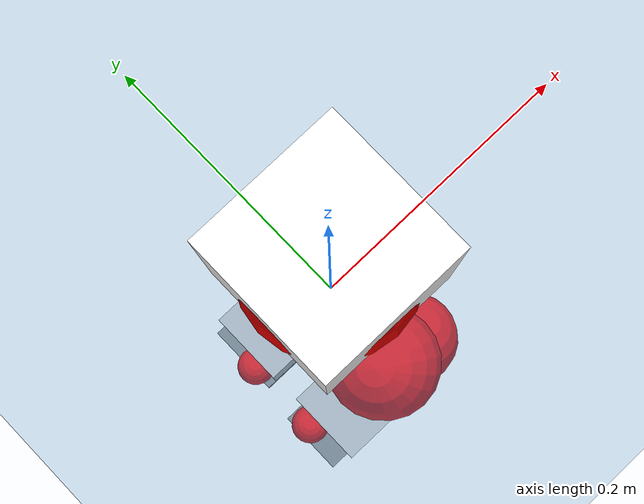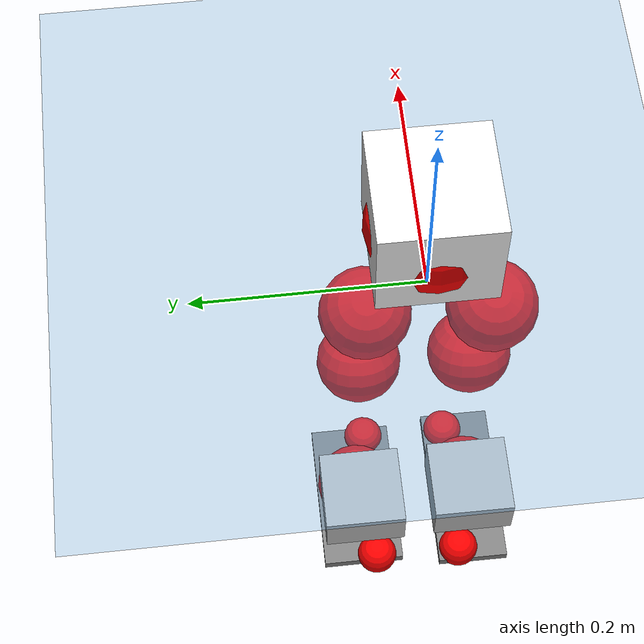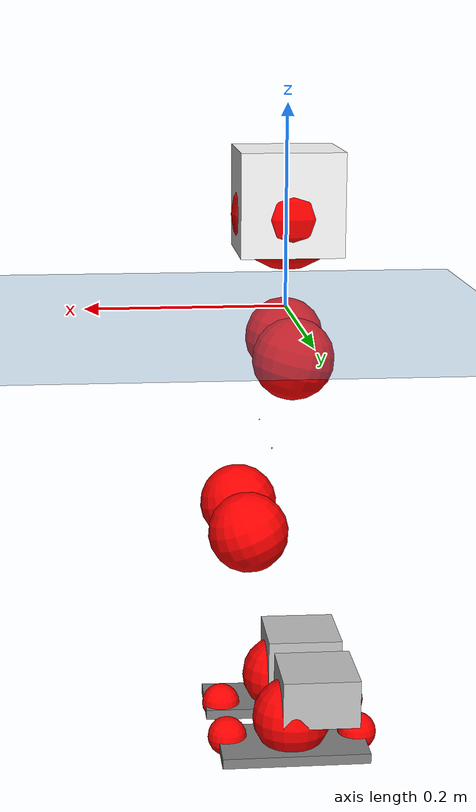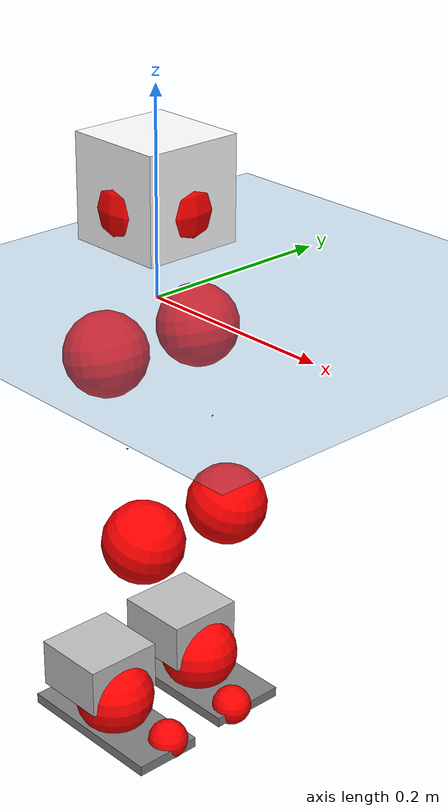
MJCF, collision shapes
<mujoco model="pi_12dof_release_v1">
  <compiler angle="radian" assetdir="assets" balanceinertia="true" inertiafromgeom="false"/>

  <option timestep="0.005" density="1.2" viscosity="2e-05"/>

  <size nkey="1"/>

  <visual>
    <quality shadowsize="8192"/>
    <map shadowclip="0.5"/>
  </visual>

  <default>
    <default class="/">
      <joint armature="0.01" damping="0.01" frictionloss="0.01"/>
      <geom contype="0" conaffinity="0" group="1" solref="-1000 -80"/>
      <site size="0.01 0.005 0.005" group="5"/>
      <general forcelimited="true" biastype="affine" gainprm="20" biasprm="0 -20 -0.5"/>
      <default class="foot">
        <geom size="0.0845 0.036 0.005" type="box" condim="6" group="4" priority="1" friction="0.9 0.2 0.2" solimp="0.015 1 0.005"/>
      </default>
      <default class="reward_collision_sphere">
        <geom group="5" rgba="1 0 0 1"/>
      </default>
    </default>
  </default>

  <asset>
    <texture type="skybox" colorspace="auto" name="//unnamed_texture_0" builtin="gradient" rgb1="0.95 0.95 0.95" rgb2="0.95 0.95 0.95" width="100" height="600"/>
    <texture type="2d" colorspace="auto" name="texplane" builtin="checker" rgb1="0.345 0.575 0.748" rgb2="0.345 0.575 0.748" markrgb="1 1 1" width="512" height="512"/>
    <material name="MatPlane" class="/" texture="texplane" texuniform="true" texrepeat="2 2" specular="0.9"/>
    <mesh name="baselink_1" class="/" file="baselink_1.STL"/>
    <mesh name="r_hip_pitch_link" class="/" file="r_hip_pitch_link.STL"/>
    <mesh name="r_hip_roll_link" class="/" file="r_hip_roll_link.STL"/>
    <mesh name="r_thigh_link" class="/" file="r_thigh_link.STL"/>
    <mesh name="r_calf_link" class="/" file="r_calf_link.STL"/>
    <mesh name="r_ankle_pitch_link" class="/" file="r_ankle_pitch_link.STL"/>
    <mesh name="r_ankle_roll_link" class="/" file="r_ankle_roll_link.STL"/>
    <mesh name="l_hip_pitch_link" class="/" file="l_hip_pitch_link.STL"/>
    <mesh name="l_hip_roll_link" class="/" file="l_hip_roll_link.STL"/>
    <mesh name="l_thigh_link" class="/" file="l_thigh_link.STL"/>
    <mesh name="l_calf_link" class="/" file="l_calf_link.STL"/>
    <mesh name="l_ankle_pitch_link" class="/" file="l_ankle_pitch_link.STL"/>
    <mesh name="l_ankle_roll_link" class="/" file="l_ankle_roll_link.STL"/>
  </asset>

  <worldbody>
    <geom name="floor" class="/" size="100 100 0.125" type="plane" group="0" material="MatPlane"/>
    <light name="toplight_shadow" class="/" pos="0 0 5" dir="0.0990148 0.0990148 -0.990148" type="directional" ambient="0.04 0.04 0.04" diffuse="0.55 0.55 0.55" specular="0.12 0.12 0.12"/>
    <light name="toplight_fill" class="/" pos="0 0 5" dir="0.0990148 0.0990148 -0.990148" type="directional" castshadow="false" ambient="0.04 0.04 0.04" diffuse="0.3 0.3 0.3" specular="0.08 0.08 0.08"/>
    <body name="trunk" pos="-0.000299403 -0.000103245 0.00126836" quat="0.999999 6.94753e-05 -0.000142206 -0.00100592">
      <inertial pos="0.00122007 -0.00248605 0.0510529" quat="0.695404 0.0097721 0.0100442 0.718482" mass="2.23295" diaginertia="0.00980793 0.00162446 0.0156088"/>
      <joint name="//unnamed_joint_0" type="free"/>
      <geom name="//unnamed_geom_1" class="/" type="mesh" density="0" rgba="1 1 1 1" mesh="baselink_1"/>
      <geom name="//unnamed_geom_2" class="/" size="0.0503515 0.0503515 0.0503515" pos="0 0 0.104565" type="box" rgba="1 1 1 1"/>
      <geom name="//unnamed_geom_3" class="reward_collision_sphere" size="0.0553867" pos="0 0 0.0914941"/>
      <site name="imu" class="/" pos="0.0104464 -0.00108291 -0.0105529" size="0.0100703"/>
      <camera name="track" class="/" pos="0 -1.42396 0" quat="0.707107 0.707107 0 0" mode="trackcom"/>
      <camera name="ego_camera" class="/" pos="0.0751538 0 0.235271" quat="-0.5 -0.5 0.5 0.5"/>
      <body name="r_hip_pitch_link" pos="-0.00224045 -0.0190619 -0.045053" quat="0.992197 2.5003e-06 -0.124682 8.08494e-06">
        <inertial pos="0.000650504 -0.0429427 -0.000312264" quat="-0.0200888 0.705696 -0.0275826 0.707692" mass="0.383553" diaginertia="0.000108661 1.70823e-05 0.000311177"/>
        <joint name="r_hip_pitch_joint" class="/" pos="0 0 0" axis="-0.00540384 -0.999985 -0.000800772" stiffness="0.0115401" range="-1.77437 1.21366" armature="0.0088533" damping="0.0136264" frictionloss="0.00913301"/>
        <geom name="//unnamed_geom_4" class="/" type="mesh" density="0" rgba="0.75294 0.75294 0.75294 1" mesh="r_hip_pitch_link"/>
        <geom name="//unnamed_geom_5" class="/" size="0.000503515 0.000503515 0.000503515" type="box" rgba="0.75294 0.75294 0.75294 1"/>
        <body name="r_hip_roll_link" pos="-0.00236527 -0.0383986 0.00255562" quat="0.999999 0.000337286 -0.00115021 0.000110332">
          <inertial pos="-0.00310335 -0.000530428 -0.0778574" quat="0.697402 -0.0739655 -0.0871692 0.707503" mass="0.387565" diaginertia="0.000343126 5.05597e-05 0.000501168"/>
          <joint name="r_hip_roll_joint" class="/" pos="0 0 0" axis="-0.999896 -0.000351233 0.0144186" stiffness="0.00113116" range="-0.141714 0.499071" armature="0.00865208" damping="0.00379366" frictionloss="0.0110316"/>
          <geom name="//unnamed_geom_6" class="/" type="mesh" density="0" rgba="0.75294 0.75294 0.75294 1" mesh="r_hip_roll_link"/>
          <geom name="//unnamed_geom_7" class="/" size="0.000503515 0.000503515 0.000503515" type="box" rgba="0.75294 0.75294 0.75294 1"/>
          <geom name="//unnamed_geom_8" class="reward_collision_sphere" size="0.0402812"/>
          <body name="r_thigh_link" pos="0.00224177 0.00241683 -0.0918052" quat="1 -7.92542e-05 2.40465e-05 -1.12543e-05">
            <inertial pos="-2.7976e-06 0.000685897 -0.0644571" quat="0.736324 0.676629 0.000202738 0.000157847" mass="0.116717" diaginertia="0.000123042 1.72256e-05 0.000221928"/>
            <joint name="r_thigh_joint" class="/" pos="0 0 0" axis="0.00329357 -0.00346361 -0.999989" stiffness="0.00725978" range="-0.358298 0.601146" armature="0.0111797" damping="0" frictionloss="0.0112518"/>
            <geom name="//unnamed_geom_9" class="/" type="mesh" density="0" rgba="0.75294 0.75294 0.75294 1" mesh="r_thigh_link"/>
            <geom name="//unnamed_geom_10" class="/" size="0.000503515 0.000503515 0.000503515" type="box" rgba="0.75294 0.75294 0.75294 1"/>
            <body name="r_calf_link" pos="-0.00127409 -0.000491124 -0.092845" quat="0.947643 0.000104182 0.31933 -6.49057e-05">
              <inertial pos="-0.00324357 -0.00195775 -0.0940981" quat="0.999994 0.00175159 -0.00285701 -0.000725381" mass="0.833193" diaginertia="0.00340404 0.000651487 0.000636587"/>
              <joint name="r_calf_joint" class="/" pos="0 0 0" axis="-0.0134969 -0.999909 -0.000848802" range="-1.65273 0.683847" armature="0.00883187" damping="0.00591157" frictionloss="0.00958434"/>
              <geom name="//unnamed_geom_11" class="/" type="mesh" density="0" rgba="0.75294 0.75294 0.75294 1" mesh="r_calf_link"/>
              <geom name="//unnamed_geom_12" class="/" size="0.000503515 0.000503515 0.000503515" type="box" rgba="0.75294 0.75294 0.75294 1"/>
              <geom name="//unnamed_geom_13" class="reward_collision_sphere" size="0.0402812"/>
              <body name="r_ankle_pitch_link" pos="0.00269405 -0.00162584 -0.185167" quat="0.980076 0.000630824 -0.198618 -0.00117217">
                <inertial pos="0.00698769 0.00216515 -0.00284771" quat="0.0125459 0.701059 -0.00295297 0.712987" mass="0.18702" diaginertia="0.000301935 3.94804e-05 0.000471724"/>
                <joint name="r_ankle_pitch_joint" class="/" pos="0 0 0" axis="-0.00154171 -0.999914 0.0130185" range="-1.24886 0.557161" armature="0.0114532" damping="0" frictionloss="0.0105998"/>
                <geom name="//unnamed_geom_14" class="/" type="mesh" density="0" rgba="0.75294 0.75294 0.75294 1" mesh="r_ankle_pitch_link"/>
                <geom name="//unnamed_geom_15" class="/" size="0.0392742 0.0402812 0.0251758" type="box" rgba="0.75294 0.75294 0.75294 1"/>
                <body name="r_ankle_roll_link" pos="0.073311 -0.000152322 0.000562" quat="0.999999 0.000389165 -0.00120808 -0.000162521">
                  <inertial pos="-0.0267154 -8.12527e-05 -0.0196205" quat="0.554735 0.43568 0.431531 0.562346" mass="0.566239" diaginertia="0.00120947 0.000190106 0.00112337"/>
                  <joint name="r_ankle_roll_joint" class="/" pos="0 0 0" axis="-0.999905 0.00216053 0.0136052" stiffness="0.0018252" range="-0.0956742 0.1536" armature="0.0110153" damping="0.0137521" frictionloss="0.0102562"/>
                  <geom name="//unnamed_geom_16" class="/" type="mesh" density="0" rgba="0.75294 0.75294 0.75294 1" mesh="r_ankle_roll_link"/>
                  <geom name="//unnamed_geom_17" class="/" type="mesh" rgba="0.75294 0.75294 0.75294 1" mesh="r_ankle_roll_link"/>
                  <geom name="right_foot" class="foot" size="0.083034 0.0355194 0.005311" pos="-0.0511046 0 -0.0575106"/>
                  <geom name="//unnamed_geom_19" class="reward_collision_sphere" size="0.0402812" pos="-0.0501025 0 -0.0261412"/>
                  <geom name="//unnamed_geom_20" class="reward_collision_sphere" size="0.0201406" pos="0.0150308 0.0142396 -0.0522824"/>
                  <geom name="//unnamed_geom_21" class="reward_collision_sphere" size="0.0201406" pos="-0.120246 0.0142396 -0.0522824"/>
                  <site name="right_foot" class="foot" pos="-0.0511046 0 -0.0575106" size="0.0100703"/>
                </body>
              </body>
            </body>
          </body>
        </body>
      </body>
      <body name="l_hip_pitch_link" pos="0.00162384 0.0139284 -0.0452197" quat="0.992203 7.8251e-05 -0.124628 -7.17439e-05">
        <inertial pos="0.000804964 0.0409491 -0.00201352" quat="-0.0334676 0.696713 0.0289833 0.715982" mass="0.406562" diaginertia="0.000134443 1.97291e-05 0.000381196"/>
        <joint name="l_hip_pitch_joint" class="/" pos="0 0 0" axis="-0.000227882 1 -0.000750059" range="-1.25999 1.75852" armature="0.00987697" damping="0.0253654" frictionloss="0.00865192"/>
        <geom name="//unnamed_geom_22" class="/" type="mesh" density="0" rgba="0.75294 0.75294 0.75294 1" mesh="l_hip_pitch_link"/>
        <geom name="//unnamed_geom_23" class="/" size="0.000503515 0.000503515 0.000503515" type="box" rgba="0.75294 0.75294 0.75294 1"/>
        <body name="l_hip_roll_link" pos="-0.00218755 0.037974 0.00251231" quat="1 -0.000136765 0.000388896 -0.000623199">
          <inertial pos="-0.00323893 0.00115808 -0.0812202" quat="0.697566 -0.0764638 -0.0777615 0.708172" mass="0.3743" diaginertia="0.000318823 5.07224e-05 0.000481555"/>
          <joint name="l_hip_roll_joint" class="/" pos="0 0 0" axis="-0.999983 -0.000864685 -0.00580218" range="-0.476175 0.119048" armature="0.00988283" damping="0.0198079" frictionloss="0.00876037"/>
          <geom name="//unnamed_geom_24" class="/" type="mesh" density="0" rgba="0.75294 0.75294 0.75294 1" mesh="l_hip_roll_link"/>
          <geom name="//unnamed_geom_25" class="/" size="0.000503515 0.000503515 0.000503515" type="box" rgba="0.75294 0.75294 0.75294 1"/>
          <geom name="//unnamed_geom_26" class="reward_collision_sphere" size="0.0402812"/>
          <body name="l_thigh_link" pos="-0.00236771 0.00111869 -0.0917465" quat="1 -4.20999e-05 -0.000409571 -0.000162636">
            <inertial pos="0.00259356 0.001225 -0.0634548" quat="0.670299 0.741995 0.00622911 -0.0102412" mass="0.117075" diaginertia="0.000123438 1.81016e-05 0.000226295"/>
            <joint name="l_thigh_joint" class="/" pos="0 0 0" axis="0.00115435 0.00186857 -0.999998" range="-0.639157 0.242878" armature="0.0105946" damping="0.00927407" frictionloss="0.0102857"/>
            <geom name="//unnamed_geom_27" class="/" type="mesh" density="0" rgba="0.75294 0.75294 0.75294 1" mesh="l_thigh_link"/>
            <geom name="//unnamed_geom_28" class="/" size="0.000503515 0.000503515 0.000503515" type="box" rgba="0.75294 0.75294 0.75294 1"/>
            <body name="l_calf_link" pos="0.000376953 -0.0013025 -0.0898001" quat="0.947515 0.00058645 0.31971 -0.00020548">
              <inertial pos="-0.00237046 0.00421815 -0.0929179" quat="0.99998 0.00398816 -0.00425421 0.00237655" mass="0.844182" diaginertia="0.00348798 0.000632956 0.000657347"/>
              <joint name="l_calf_joint" class="/" pos="0 0 0" axis="-0.0137719 0.999905 8.77369e-05" range="-0.659076 1.68042" armature="0.0103895" damping="0" frictionloss="0.0108058"/>
              <geom name="//unnamed_geom_29" class="/" type="mesh" density="0" rgba="0.75294 0.75294 0.75294 1" mesh="l_calf_link"/>
              <geom name="//unnamed_geom_30" class="/" size="0.000503515 0.000503515 0.000503515" type="box" rgba="0.75294 0.75294 0.75294 1"/>
              <geom name="//unnamed_geom_31" class="reward_collision_sphere" size="0.0402812"/>
              <body name="l_ankle_pitch_link" pos="0.00142718 0.00252547 -0.18558" quat="0.980164 0.000308676 -0.198183 0.00115903">
                <inertial pos="0.00487565 0.00187245 -0.000413337" quat="-0.00187612 0.707129 0.00299492 0.707076" mass="0.167355" diaginertia="0.000289569 3.96664e-05 0.000446737"/>
                <joint name="l_ankle_pitch_joint" class="/" pos="0 0 0" axis="0.000404842 1 -0.000438184" range="-0.557453 1.24758" armature="0.00878108" damping="0.00700398" frictionloss="0.0109996"/>
                <geom name="//unnamed_geom_32" class="/" type="mesh" density="0" rgba="0.75294 0.75294 0.75294 1" mesh="l_ankle_pitch_link"/>
                <geom name="//unnamed_geom_33" class="/" size="0.0392742 0.0402812 0.0251758" type="box" rgba="0.75294 0.75294 0.75294 1"/>
                <body name="l_ankle_roll_link" pos="0.0762844 0.00264943 -0.000483098" quat="1 -0.000276742 0.000627453 0.0006358">
                  <inertial pos="-0.021688 -0.00294491 -0.0188667" quat="0.559964 0.431152 0.444893 0.550108" mass="0.532813" diaginertia="0.00110909 0.000188681 0.0010479"/>
                  <joint name="l_ankle_roll_joint" class="/" pos="0 0 0" axis="-0.999998 0.00193193 0.000812219" range="-0.101352 0.0965247" armature="0.0115825" damping="0.0188795" frictionloss="0.0111086"/>
                  <geom name="//unnamed_geom_34" class="/" type="mesh" density="0" rgba="0.75294 0.75294 0.75294 1" mesh="l_ankle_roll_link"/>
                  <geom name="//unnamed_geom_35" class="/" type="mesh" rgba="0.75294 0.75294 0.75294 1" mesh="l_ankle_roll_link"/>
                  <geom name="left_foot" class="foot" size="0.0753033 0.0406949 0.00525839" pos="-0.0511046 0 -0.0575106"/>
                  <geom name="//unnamed_geom_37" class="reward_collision_sphere" size="0.0402812" pos="-0.0501025 0 -0.0261412"/>
                  <geom name="//unnamed_geom_38" class="reward_collision_sphere" size="0.0201406" pos="0.0150308 -0.0142396 -0.0522824"/>
                  <geom name="//unnamed_geom_39" class="reward_collision_sphere" size="0.0201406" pos="-0.120246 -0.0142396 -0.0522824"/>
                  <site name="left_foot" class="foot" pos="-0.0511046 0 -0.0575106" size="0.0100703"/>
                </body>
              </body>
            </body>
          </body>
        </body>
      </body>
    </body>
  </worldbody>

  <contact>
    <pair class="/" geom1="floor" geom2="right_foot" name="//unnamed_contact_1"/>
    <pair class="/" geom1="floor" geom2="left_foot" name="//unnamed_contact_0"/>
  </contact>

  <actuator>
    <general name="r_hip_pitch_joint" class="/" joint="r_hip_pitch_joint" forcerange="-23.3489 23.3489" gainprm="19.6772" biasprm="0 -19.6772 -0.482473"/>
    <general name="r_hip_roll_joint" class="/" joint="r_hip_roll_joint" forcerange="-21.0972 21.0972" gainprm="19.6772" biasprm="0 -19.6772 -0.482473"/>
    <general name="r_thigh_joint" class="/" joint="r_thigh_joint" forcerange="-20.3908 20.3908" gainprm="19.6772" biasprm="0 -19.6772 -0.482473"/>
    <general name="r_calf_joint" class="/" joint="r_calf_joint" forcerange="-22.8742 22.8742" gainprm="19.6772" biasprm="0 -19.6772 -0.482473"/>
    <general name="r_ankle_pitch_joint" class="/" joint="r_ankle_pitch_joint" forcerange="-20.5853 20.5853" gainprm="19.6772" biasprm="0 -19.6772 -0.482473"/>
    <general name="r_ankle_roll_joint" class="/" joint="r_ankle_roll_joint" forcerange="-21.9911 21.9911" gainprm="19.6772" biasprm="0 -19.6772 -0.482473"/>
    <general name="l_hip_pitch_joint" class="/" joint="l_hip_pitch_joint" forcerange="-18.9557 18.9557" gainprm="19.6772" biasprm="0 -19.6772 -0.482473"/>
    <general name="l_hip_roll_joint" class="/" joint="l_hip_roll_joint" forcerange="-19.6934 19.6934" gainprm="19.6772" biasprm="0 -19.6772 -0.482473"/>
    <general name="l_thigh_joint" class="/" joint="l_thigh_joint" forcerange="-20.2225 20.2225" gainprm="19.6772" biasprm="0 -19.6772 -0.482473"/>
    <general name="l_calf_joint" class="/" joint="l_calf_joint" forcerange="-21.2188 21.2188" gainprm="19.6772" biasprm="0 -19.6772 -0.482473"/>
    <general name="l_ankle_pitch_joint" class="/" joint="l_ankle_pitch_joint" forcerange="-23.3763 23.3763" gainprm="19.6772" biasprm="0 -19.6772 -0.482473"/>
    <general name="l_ankle_roll_joint" class="/" joint="l_ankle_roll_joint" forcerange="-21.4145 21.4145" gainprm="19.6772" biasprm="0 -19.6772 -0.482473"/>
  </actuator>

  <sensor>
    <gyro site="imu" name="imu_angular_velocity"/>
    <velocimeter site="imu" name="imu_linear_velocity"/>
    <framelinvel objtype="site" objname="left_foot" name="left_foot_global_linear_velocity"/>
    <framelinvel objtype="site" objname="right_foot" name="right_foot_global_linear_velocity"/>
  </sensor>

  <keyframe>
    <key name="home" qpos="0 0 0.291 1 0 0 0 0.4 0 0 -0.8 0.4 0 -0.4 0 0 0.8 -0.4 0"/>
  </keyframe>
</mujoco>
